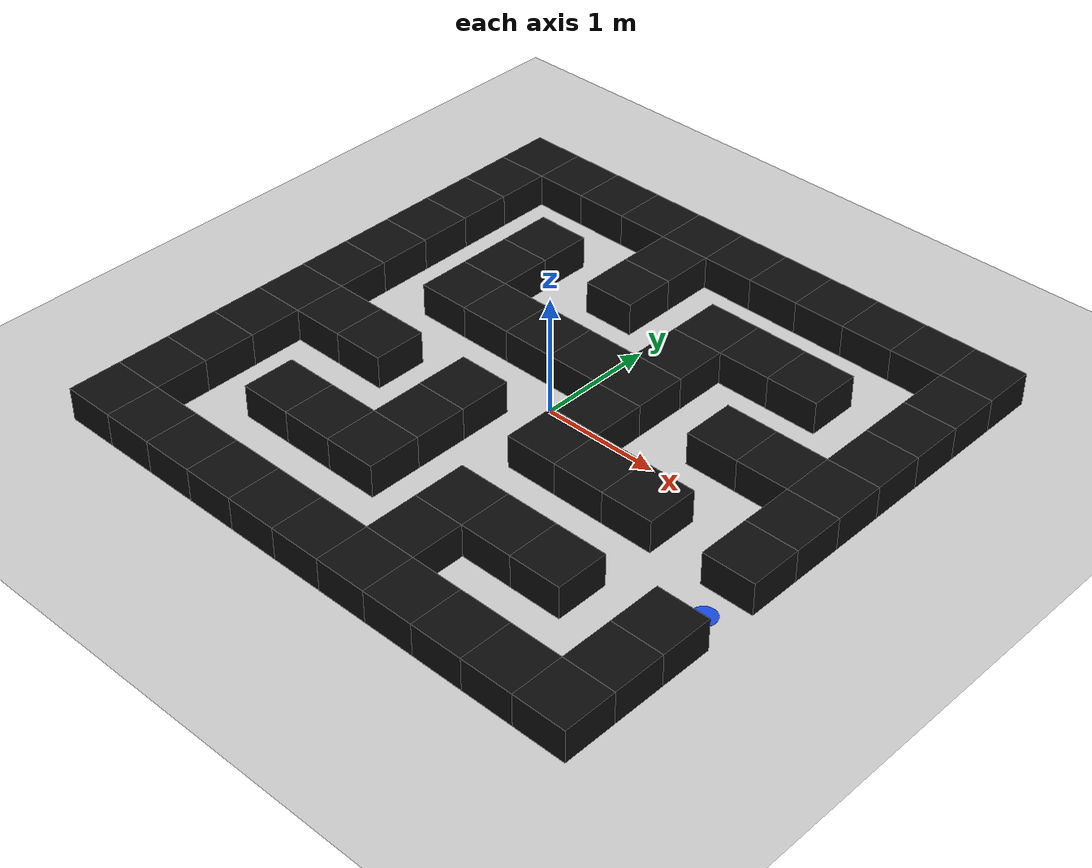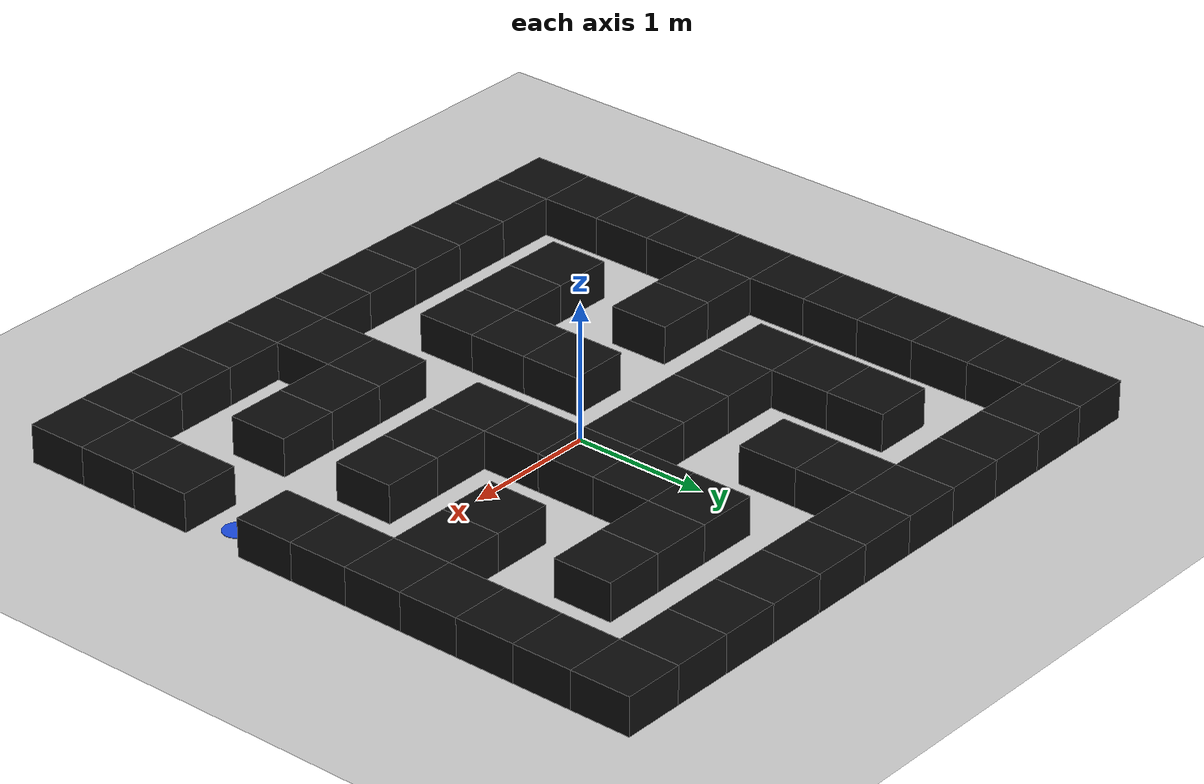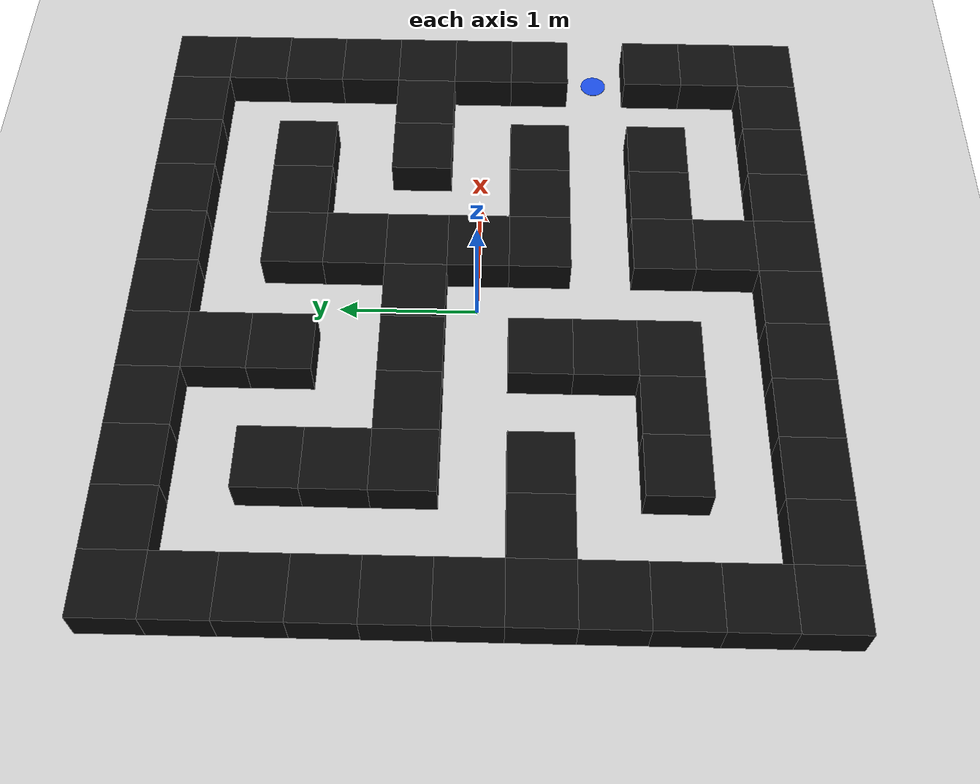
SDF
<?xml version="1.0"?>
<sdf version="1.9">
  <world name="ros2_world">

    <plugin filename="gz-sim-physics-system"
            name="gz::sim::systems::Physics"/>

    <plugin filename="gz-sim-user-commands-system"
            name="gz::sim::systems::UserCommands"/>

    <plugin filename="gz-sim-scene-broadcaster-system"
            name="gz::sim::systems::SceneBroadcaster"/>

    <plugin filename="gz-sim-sensors-system"
            name="gz::sim::systems::Sensors">
      <render_engine>ogre2</render_engine>
    </plugin>

    <light type="directional" name="sun">
      <pose>0 0 10 0 0 0</pose>
      <diffuse>0.8 0.8 0.8 1</diffuse>
      <specular>0.2 0.2 0.2 1</specular>
      <direction>-0.5 0.1 -0.9</direction>
    </light>

    <model name="ground_plane">
      <static>true</static>
      <link name="link">
        <collision name="collision">
          <geometry><plane><normal>0 0 1</normal><size>9 9</size></plane></geometry>
        </collision>
        <visual name="visual">
          <geometry><plane><normal>0 0 1</normal><size>9 9</size></plane></geometry>
          <material>
            <ambient>0.82 0.82 0.82 1</ambient>
            <diffuse>0.82 0.82 0.82 1</diffuse>
          </material>
        </visual>
      </link>
    </model>

    <model name="wall_0">
      <static>true</static>
      <pose>-2.250 2.250 0.140 0 0 0</pose>
      <link name="link">
        <collision name="collision">
          <geometry><box><size>0.450 0.450 0.280</size></box></geometry>
        </collision>
        <visual name="visual">
          <geometry><box><size>0.450 0.450 0.280</size></box></geometry>
          <material>
            <ambient>0.05 0.05 0.05 1</ambient>
            <diffuse>0.05 0.05 0.05 1</diffuse>
          </material>
        </visual>
      </link>
    </model>

    <model name="wall_1">
      <static>true</static>
      <pose>-1.800 2.250 0.140 0 0 0</pose>
      <link name="link">
        <collision name="collision">
          <geometry><box><size>0.450 0.450 0.280</size></box></geometry>
        </collision>
        <visual name="visual">
          <geometry><box><size>0.450 0.450 0.280</size></box></geometry>
          <material>
            <ambient>0.05 0.05 0.05 1</ambient>
            <diffuse>0.05 0.05 0.05 1</diffuse>
          </material>
        </visual>
      </link>
    </model>

    <model name="wall_2">
      <static>true</static>
      <pose>-1.350 2.250 0.140 0 0 0</pose>
      <link name="link">
        <collision name="collision">
          <geometry><box><size>0.450 0.450 0.280</size></box></geometry>
        </collision>
        <visual name="visual">
          <geometry><box><size>0.450 0.450 0.280</size></box></geometry>
          <material>
            <ambient>0.05 0.05 0.05 1</ambient>
            <diffuse>0.05 0.05 0.05 1</diffuse>
          </material>
        </visual>
      </link>
    </model>

    <model name="wall_3">
      <static>true</static>
      <pose>-0.900 2.250 0.140 0 0 0</pose>
      <link name="link">
        <collision name="collision">
          <geometry><box><size>0.450 0.450 0.280</size></box></geometry>
        </collision>
        <visual name="visual">
          <geometry><box><size>0.450 0.450 0.280</size></box></geometry>
          <material>
            <ambient>0.05 0.05 0.05 1</ambient>
            <diffuse>0.05 0.05 0.05 1</diffuse>
          </material>
        </visual>
      </link>
    </model>

    <model name="wall_4">
      <static>true</static>
      <pose>-0.450 2.250 0.140 0 0 0</pose>
      <link name="link">
        <collision name="collision">
          <geometry><box><size>0.450 0.450 0.280</size></box></geometry>
        </collision>
        <visual name="visual">
          <geometry><box><size>0.450 0.450 0.280</size></box></geometry>
          <material>
            <ambient>0.05 0.05 0.05 1</ambient>
            <diffuse>0.05 0.05 0.05 1</diffuse>
          </material>
        </visual>
      </link>
    </model>

    <model name="wall_5">
      <static>true</static>
      <pose>0.000 2.250 0.140 0 0 0</pose>
      <link name="link">
        <collision name="collision">
          <geometry><box><size>0.450 0.450 0.280</size></box></geometry>
        </collision>
        <visual name="visual">
          <geometry><box><size>0.450 0.450 0.280</size></box></geometry>
          <material>
            <ambient>0.05 0.05 0.05 1</ambient>
            <diffuse>0.05 0.05 0.05 1</diffuse>
          </material>
        </visual>
      </link>
    </model>

    <model name="wall_6">
      <static>true</static>
      <pose>0.450 2.250 0.140 0 0 0</pose>
      <link name="link">
        <collision name="collision">
          <geometry><box><size>0.450 0.450 0.280</size></box></geometry>
        </collision>
        <visual name="visual">
          <geometry><box><size>0.450 0.450 0.280</size></box></geometry>
          <material>
            <ambient>0.05 0.05 0.05 1</ambient>
            <diffuse>0.05 0.05 0.05 1</diffuse>
          </material>
        </visual>
      </link>
    </model>

    <model name="wall_7">
      <static>true</static>
      <pose>0.900 2.250 0.140 0 0 0</pose>
      <link name="link">
        <collision name="collision">
          <geometry><box><size>0.450 0.450 0.280</size></box></geometry>
        </collision>
        <visual name="visual">
          <geometry><box><size>0.450 0.450 0.280</size></box></geometry>
          <material>
            <ambient>0.05 0.05 0.05 1</ambient>
            <diffuse>0.05 0.05 0.05 1</diffuse>
          </material>
        </visual>
      </link>
    </model>

    <model name="wall_8">
      <static>true</static>
      <pose>1.350 2.250 0.140 0 0 0</pose>
      <link name="link">
        <collision name="collision">
          <geometry><box><size>0.450 0.450 0.280</size></box></geometry>
        </collision>
        <visual name="visual">
          <geometry><box><size>0.450 0.450 0.280</size></box></geometry>
          <material>
            <ambient>0.05 0.05 0.05 1</ambient>
            <diffuse>0.05 0.05 0.05 1</diffuse>
          </material>
        </visual>
      </link>
    </model>

    <model name="wall_9">
      <static>true</static>
      <pose>1.800 2.250 0.140 0 0 0</pose>
      <link name="link">
        <collision name="collision">
          <geometry><box><size>0.450 0.450 0.280</size></box></geometry>
        </collision>
        <visual name="visual">
          <geometry><box><size>0.450 0.450 0.280</size></box></geometry>
          <material>
            <ambient>0.05 0.05 0.05 1</ambient>
            <diffuse>0.05 0.05 0.05 1</diffuse>
          </material>
        </visual>
      </link>
    </model>

    <model name="wall_10">
      <static>true</static>
      <pose>2.250 2.250 0.140 0 0 0</pose>
      <link name="link">
        <collision name="collision">
          <geometry><box><size>0.450 0.450 0.280</size></box></geometry>
        </collision>
        <visual name="visual">
          <geometry><box><size>0.450 0.450 0.280</size></box></geometry>
          <material>
            <ambient>0.05 0.05 0.05 1</ambient>
            <diffuse>0.05 0.05 0.05 1</diffuse>
          </material>
        </visual>
      </link>
    </model>

    <model name="wall_11">
      <static>true</static>
      <pose>-2.250 1.800 0.140 0 0 0</pose>
      <link name="link">
        <collision name="collision">
          <geometry><box><size>0.450 0.450 0.280</size></box></geometry>
        </collision>
        <visual name="visual">
          <geometry><box><size>0.450 0.450 0.280</size></box></geometry>
          <material>
            <ambient>0.05 0.05 0.05 1</ambient>
            <diffuse>0.05 0.05 0.05 1</diffuse>
          </material>
        </visual>
      </link>
    </model>

    <model name="wall_12">
      <static>true</static>
      <pose>-0.450 1.800 0.140 0 0 0</pose>
      <link name="link">
        <collision name="collision">
          <geometry><box><size>0.450 0.450 0.280</size></box></geometry>
        </collision>
        <visual name="visual">
          <geometry><box><size>0.450 0.450 0.280</size></box></geometry>
          <material>
            <ambient>0.05 0.05 0.05 1</ambient>
            <diffuse>0.05 0.05 0.05 1</diffuse>
          </material>
        </visual>
      </link>
    </model>

    <model name="wall_13">
      <static>true</static>
      <pose>2.250 1.800 0.140 0 0 0</pose>
      <link name="link">
        <collision name="collision">
          <geometry><box><size>0.450 0.450 0.280</size></box></geometry>
        </collision>
        <visual name="visual">
          <geometry><box><size>0.450 0.450 0.280</size></box></geometry>
          <material>
            <ambient>0.05 0.05 0.05 1</ambient>
            <diffuse>0.05 0.05 0.05 1</diffuse>
          </material>
        </visual>
      </link>
    </model>

    <model name="wall_14">
      <static>true</static>
      <pose>-2.250 1.350 0.140 0 0 0</pose>
      <link name="link">
        <collision name="collision">
          <geometry><box><size>0.450 0.450 0.280</size></box></geometry>
        </collision>
        <visual name="visual">
          <geometry><box><size>0.450 0.450 0.280</size></box></geometry>
          <material>
            <ambient>0.05 0.05 0.05 1</ambient>
            <diffuse>0.05 0.05 0.05 1</diffuse>
          </material>
        </visual>
      </link>
    </model>

    <model name="wall_15">
      <static>true</static>
      <pose>-1.350 1.350 0.140 0 0 0</pose>
      <link name="link">
        <collision name="collision">
          <geometry><box><size>0.450 0.450 0.280</size></box></geometry>
        </collision>
        <visual name="visual">
          <geometry><box><size>0.450 0.450 0.280</size></box></geometry>
          <material>
            <ambient>0.05 0.05 0.05 1</ambient>
            <diffuse>0.05 0.05 0.05 1</diffuse>
          </material>
        </visual>
      </link>
    </model>

    <model name="wall_16">
      <static>true</static>
      <pose>-0.450 1.350 0.140 0 0 0</pose>
      <link name="link">
        <collision name="collision">
          <geometry><box><size>0.450 0.450 0.280</size></box></geometry>
        </collision>
        <visual name="visual">
          <geometry><box><size>0.450 0.450 0.280</size></box></geometry>
          <material>
            <ambient>0.05 0.05 0.05 1</ambient>
            <diffuse>0.05 0.05 0.05 1</diffuse>
          </material>
        </visual>
      </link>
    </model>

    <model name="wall_17">
      <static>true</static>
      <pose>0.450 1.350 0.140 0 0 0</pose>
      <link name="link">
        <collision name="collision">
          <geometry><box><size>0.450 0.450 0.280</size></box></geometry>
        </collision>
        <visual name="visual">
          <geometry><box><size>0.450 0.450 0.280</size></box></geometry>
          <material>
            <ambient>0.05 0.05 0.05 1</ambient>
            <diffuse>0.05 0.05 0.05 1</diffuse>
          </material>
        </visual>
      </link>
    </model>

    <model name="wall_18">
      <static>true</static>
      <pose>0.900 1.350 0.140 0 0 0</pose>
      <link name="link">
        <collision name="collision">
          <geometry><box><size>0.450 0.450 0.280</size></box></geometry>
        </collision>
        <visual name="visual">
          <geometry><box><size>0.450 0.450 0.280</size></box></geometry>
          <material>
            <ambient>0.05 0.05 0.05 1</ambient>
            <diffuse>0.05 0.05 0.05 1</diffuse>
          </material>
        </visual>
      </link>
    </model>

    <model name="wall_19">
      <static>true</static>
      <pose>1.350 1.350 0.140 0 0 0</pose>
      <link name="link">
        <collision name="collision">
          <geometry><box><size>0.450 0.450 0.280</size></box></geometry>
        </collision>
        <visual name="visual">
          <geometry><box><size>0.450 0.450 0.280</size></box></geometry>
          <material>
            <ambient>0.05 0.05 0.05 1</ambient>
            <diffuse>0.05 0.05 0.05 1</diffuse>
          </material>
        </visual>
      </link>
    </model>

    <model name="wall_20">
      <static>true</static>
      <pose>2.250 1.350 0.140 0 0 0</pose>
      <link name="link">
        <collision name="collision">
          <geometry><box><size>0.450 0.450 0.280</size></box></geometry>
        </collision>
        <visual name="visual">
          <geometry><box><size>0.450 0.450 0.280</size></box></geometry>
          <material>
            <ambient>0.05 0.05 0.05 1</ambient>
            <diffuse>0.05 0.05 0.05 1</diffuse>
          </material>
        </visual>
      </link>
    </model>

    <model name="wall_21">
      <static>true</static>
      <pose>-2.250 0.900 0.140 0 0 0</pose>
      <link name="link">
        <collision name="collision">
          <geometry><box><size>0.450 0.450 0.280</size></box></geometry>
        </collision>
        <visual name="visual">
          <geometry><box><size>0.450 0.450 0.280</size></box></geometry>
          <material>
            <ambient>0.05 0.05 0.05 1</ambient>
            <diffuse>0.05 0.05 0.05 1</diffuse>
          </material>
        </visual>
      </link>
    </model>

    <model name="wall_22">
      <static>true</static>
      <pose>-1.350 0.900 0.140 0 0 0</pose>
      <link name="link">
        <collision name="collision">
          <geometry><box><size>0.450 0.450 0.280</size></box></geometry>
        </collision>
        <visual name="visual">
          <geometry><box><size>0.450 0.450 0.280</size></box></geometry>
          <material>
            <ambient>0.05 0.05 0.05 1</ambient>
            <diffuse>0.05 0.05 0.05 1</diffuse>
          </material>
        </visual>
      </link>
    </model>

    <model name="wall_23">
      <static>true</static>
      <pose>0.450 0.900 0.140 0 0 0</pose>
      <link name="link">
        <collision name="collision">
          <geometry><box><size>0.450 0.450 0.280</size></box></geometry>
        </collision>
        <visual name="visual">
          <geometry><box><size>0.450 0.450 0.280</size></box></geometry>
          <material>
            <ambient>0.05 0.05 0.05 1</ambient>
            <diffuse>0.05 0.05 0.05 1</diffuse>
          </material>
        </visual>
      </link>
    </model>

    <model name="wall_24">
      <static>true</static>
      <pose>2.250 0.900 0.140 0 0 0</pose>
      <link name="link">
        <collision name="collision">
          <geometry><box><size>0.450 0.450 0.280</size></box></geometry>
        </collision>
        <visual name="visual">
          <geometry><box><size>0.450 0.450 0.280</size></box></geometry>
          <material>
            <ambient>0.05 0.05 0.05 1</ambient>
            <diffuse>0.05 0.05 0.05 1</diffuse>
          </material>
        </visual>
      </link>
    </model>

    <model name="wall_25">
      <static>true</static>
      <pose>-2.250 0.450 0.140 0 0 0</pose>
      <link name="link">
        <collision name="collision">
          <geometry><box><size>0.450 0.450 0.280</size></box></geometry>
        </collision>
        <visual name="visual">
          <geometry><box><size>0.450 0.450 0.280</size></box></geometry>
          <material>
            <ambient>0.05 0.05 0.05 1</ambient>
            <diffuse>0.05 0.05 0.05 1</diffuse>
          </material>
        </visual>
      </link>
    </model>

    <model name="wall_26">
      <static>true</static>
      <pose>-1.350 0.450 0.140 0 0 0</pose>
      <link name="link">
        <collision name="collision">
          <geometry><box><size>0.450 0.450 0.280</size></box></geometry>
        </collision>
        <visual name="visual">
          <geometry><box><size>0.450 0.450 0.280</size></box></geometry>
          <material>
            <ambient>0.05 0.05 0.05 1</ambient>
            <diffuse>0.05 0.05 0.05 1</diffuse>
          </material>
        </visual>
      </link>
    </model>

    <model name="wall_27">
      <static>true</static>
      <pose>-0.900 0.450 0.140 0 0 0</pose>
      <link name="link">
        <collision name="collision">
          <geometry><box><size>0.450 0.450 0.280</size></box></geometry>
        </collision>
        <visual name="visual">
          <geometry><box><size>0.450 0.450 0.280</size></box></geometry>
          <material>
            <ambient>0.05 0.05 0.05 1</ambient>
            <diffuse>0.05 0.05 0.05 1</diffuse>
          </material>
        </visual>
      </link>
    </model>

    <model name="wall_28">
      <static>true</static>
      <pose>-0.450 0.450 0.140 0 0 0</pose>
      <link name="link">
        <collision name="collision">
          <geometry><box><size>0.450 0.450 0.280</size></box></geometry>
        </collision>
        <visual name="visual">
          <geometry><box><size>0.450 0.450 0.280</size></box></geometry>
          <material>
            <ambient>0.05 0.05 0.05 1</ambient>
            <diffuse>0.05 0.05 0.05 1</diffuse>
          </material>
        </visual>
      </link>
    </model>

    <model name="wall_29">
      <static>true</static>
      <pose>0.000 0.450 0.140 0 0 0</pose>
      <link name="link">
        <collision name="collision">
          <geometry><box><size>0.450 0.450 0.280</size></box></geometry>
        </collision>
        <visual name="visual">
          <geometry><box><size>0.450 0.450 0.280</size></box></geometry>
          <material>
            <ambient>0.05 0.05 0.05 1</ambient>
            <diffuse>0.05 0.05 0.05 1</diffuse>
          </material>
        </visual>
      </link>
    </model>

    <model name="wall_30">
      <static>true</static>
      <pose>0.450 0.450 0.140 0 0 0</pose>
      <link name="link">
        <collision name="collision">
          <geometry><box><size>0.450 0.450 0.280</size></box></geometry>
        </collision>
        <visual name="visual">
          <geometry><box><size>0.450 0.450 0.280</size></box></geometry>
          <material>
            <ambient>0.05 0.05 0.05 1</ambient>
            <diffuse>0.05 0.05 0.05 1</diffuse>
          </material>
        </visual>
      </link>
    </model>

    <model name="wall_31">
      <static>true</static>
      <pose>1.350 0.450 0.140 0 0 0</pose>
      <link name="link">
        <collision name="collision">
          <geometry><box><size>0.450 0.450 0.280</size></box></geometry>
        </collision>
        <visual name="visual">
          <geometry><box><size>0.450 0.450 0.280</size></box></geometry>
          <material>
            <ambient>0.05 0.05 0.05 1</ambient>
            <diffuse>0.05 0.05 0.05 1</diffuse>
          </material>
        </visual>
      </link>
    </model>

    <model name="wall_32">
      <static>true</static>
      <pose>1.800 0.450 0.140 0 0 0</pose>
      <link name="link">
        <collision name="collision">
          <geometry><box><size>0.450 0.450 0.280</size></box></geometry>
        </collision>
        <visual name="visual">
          <geometry><box><size>0.450 0.450 0.280</size></box></geometry>
          <material>
            <ambient>0.05 0.05 0.05 1</ambient>
            <diffuse>0.05 0.05 0.05 1</diffuse>
          </material>
        </visual>
      </link>
    </model>

    <model name="wall_33">
      <static>true</static>
      <pose>2.250 0.450 0.140 0 0 0</pose>
      <link name="link">
        <collision name="collision">
          <geometry><box><size>0.450 0.450 0.280</size></box></geometry>
        </collision>
        <visual name="visual">
          <geometry><box><size>0.450 0.450 0.280</size></box></geometry>
          <material>
            <ambient>0.05 0.05 0.05 1</ambient>
            <diffuse>0.05 0.05 0.05 1</diffuse>
          </material>
        </visual>
      </link>
    </model>

    <model name="wall_34">
      <static>true</static>
      <pose>-2.250 0.000 0.140 0 0 0</pose>
      <link name="link">
        <collision name="collision">
          <geometry><box><size>0.450 0.450 0.280</size></box></geometry>
        </collision>
        <visual name="visual">
          <geometry><box><size>0.450 0.450 0.280</size></box></geometry>
          <material>
            <ambient>0.05 0.05 0.05 1</ambient>
            <diffuse>0.05 0.05 0.05 1</diffuse>
          </material>
        </visual>
      </link>
    </model>

    <model name="wall_35">
      <static>true</static>
      <pose>0.450 0.000 0.140 0 0 0</pose>
      <link name="link">
        <collision name="collision">
          <geometry><box><size>0.450 0.450 0.280</size></box></geometry>
        </collision>
        <visual name="visual">
          <geometry><box><size>0.450 0.450 0.280</size></box></geometry>
          <material>
            <ambient>0.05 0.05 0.05 1</ambient>
            <diffuse>0.05 0.05 0.05 1</diffuse>
          </material>
        </visual>
      </link>
    </model>

    <model name="wall_36">
      <static>true</static>
      <pose>2.250 0.000 0.140 0 0 0</pose>
      <link name="link">
        <collision name="collision">
          <geometry><box><size>0.450 0.450 0.280</size></box></geometry>
        </collision>
        <visual name="visual">
          <geometry><box><size>0.450 0.450 0.280</size></box></geometry>
          <material>
            <ambient>0.05 0.05 0.05 1</ambient>
            <diffuse>0.05 0.05 0.05 1</diffuse>
          </material>
        </visual>
      </link>
    </model>

    <model name="wall_37">
      <static>true</static>
      <pose>-2.250 -0.450 0.140 0 0 0</pose>
      <link name="link">
        <collision name="collision">
          <geometry><box><size>0.450 0.450 0.280</size></box></geometry>
        </collision>
        <visual name="visual">
          <geometry><box><size>0.450 0.450 0.280</size></box></geometry>
          <material>
            <ambient>0.05 0.05 0.05 1</ambient>
            <diffuse>0.05 0.05 0.05 1</diffuse>
          </material>
        </visual>
      </link>
    </model>

    <model name="wall_38">
      <static>true</static>
      <pose>-1.800 -0.450 0.140 0 0 0</pose>
      <link name="link">
        <collision name="collision">
          <geometry><box><size>0.450 0.450 0.280</size></box></geometry>
        </collision>
        <visual name="visual">
          <geometry><box><size>0.450 0.450 0.280</size></box></geometry>
          <material>
            <ambient>0.05 0.05 0.05 1</ambient>
            <diffuse>0.05 0.05 0.05 1</diffuse>
          </material>
        </visual>
      </link>
    </model>

    <model name="wall_39">
      <static>true</static>
      <pose>-1.350 -0.450 0.140 0 0 0</pose>
      <link name="link">
        <collision name="collision">
          <geometry><box><size>0.450 0.450 0.280</size></box></geometry>
        </collision>
        <visual name="visual">
          <geometry><box><size>0.450 0.450 0.280</size></box></geometry>
          <material>
            <ambient>0.05 0.05 0.05 1</ambient>
            <diffuse>0.05 0.05 0.05 1</diffuse>
          </material>
        </visual>
      </link>
    </model>

    <model name="wall_40">
      <static>true</static>
      <pose>-0.450 -0.450 0.140 0 0 0</pose>
      <link name="link">
        <collision name="collision">
          <geometry><box><size>0.450 0.450 0.280</size></box></geometry>
        </collision>
        <visual name="visual">
          <geometry><box><size>0.450 0.450 0.280</size></box></geometry>
          <material>
            <ambient>0.05 0.05 0.05 1</ambient>
            <diffuse>0.05 0.05 0.05 1</diffuse>
          </material>
        </visual>
      </link>
    </model>

    <model name="wall_41">
      <static>true</static>
      <pose>0.450 -0.450 0.140 0 0 0</pose>
      <link name="link">
        <collision name="collision">
          <geometry><box><size>0.450 0.450 0.280</size></box></geometry>
        </collision>
        <visual name="visual">
          <geometry><box><size>0.450 0.450 0.280</size></box></geometry>
          <material>
            <ambient>0.05 0.05 0.05 1</ambient>
            <diffuse>0.05 0.05 0.05 1</diffuse>
          </material>
        </visual>
      </link>
    </model>

    <model name="wall_42">
      <static>true</static>
      <pose>0.900 -0.450 0.140 0 0 0</pose>
      <link name="link">
        <collision name="collision">
          <geometry><box><size>0.450 0.450 0.280</size></box></geometry>
        </collision>
        <visual name="visual">
          <geometry><box><size>0.450 0.450 0.280</size></box></geometry>
          <material>
            <ambient>0.05 0.05 0.05 1</ambient>
            <diffuse>0.05 0.05 0.05 1</diffuse>
          </material>
        </visual>
      </link>
    </model>

    <model name="wall_43">
      <static>true</static>
      <pose>1.350 -0.450 0.140 0 0 0</pose>
      <link name="link">
        <collision name="collision">
          <geometry><box><size>0.450 0.450 0.280</size></box></geometry>
        </collision>
        <visual name="visual">
          <geometry><box><size>0.450 0.450 0.280</size></box></geometry>
          <material>
            <ambient>0.05 0.05 0.05 1</ambient>
            <diffuse>0.05 0.05 0.05 1</diffuse>
          </material>
        </visual>
      </link>
    </model>

    <model name="wall_44">
      <static>true</static>
      <pose>2.250 -0.450 0.140 0 0 0</pose>
      <link name="link">
        <collision name="collision">
          <geometry><box><size>0.450 0.450 0.280</size></box></geometry>
        </collision>
        <visual name="visual">
          <geometry><box><size>0.450 0.450 0.280</size></box></geometry>
          <material>
            <ambient>0.05 0.05 0.05 1</ambient>
            <diffuse>0.05 0.05 0.05 1</diffuse>
          </material>
        </visual>
      </link>
    </model>

    <model name="wall_45">
      <static>true</static>
      <pose>-2.250 -0.900 0.140 0 0 0</pose>
      <link name="link">
        <collision name="collision">
          <geometry><box><size>0.450 0.450 0.280</size></box></geometry>
        </collision>
        <visual name="visual">
          <geometry><box><size>0.450 0.450 0.280</size></box></geometry>
          <material>
            <ambient>0.05 0.05 0.05 1</ambient>
            <diffuse>0.05 0.05 0.05 1</diffuse>
          </material>
        </visual>
      </link>
    </model>

    <model name="wall_46">
      <static>true</static>
      <pose>-0.450 -0.900 0.140 0 0 0</pose>
      <link name="link">
        <collision name="collision">
          <geometry><box><size>0.450 0.450 0.280</size></box></geometry>
        </collision>
        <visual name="visual">
          <geometry><box><size>0.450 0.450 0.280</size></box></geometry>
          <material>
            <ambient>0.05 0.05 0.05 1</ambient>
            <diffuse>0.05 0.05 0.05 1</diffuse>
          </material>
        </visual>
      </link>
    </model>

    <model name="entrada_0">
      <static>true</static>
      <pose>2.250 -0.900 0.002 0 0 0</pose>
      <link name="link">
        <visual name="visual">
          <geometry><cylinder><radius>0.099</radius><length>0.004</length></cylinder></geometry>
          <material>
            <ambient>0.1 0.3 0.9 1</ambient>
            <diffuse>0.1 0.3 0.9 1</diffuse>
          </material>
        </visual>
      </link>
    </model>

    <model name="wall_47">
      <static>true</static>
      <pose>-2.250 -1.350 0.140 0 0 0</pose>
      <link name="link">
        <collision name="collision">
          <geometry><box><size>0.450 0.450 0.280</size></box></geometry>
        </collision>
        <visual name="visual">
          <geometry><box><size>0.450 0.450 0.280</size></box></geometry>
          <material>
            <ambient>0.05 0.05 0.05 1</ambient>
            <diffuse>0.05 0.05 0.05 1</diffuse>
          </material>
        </visual>
      </link>
    </model>

    <model name="wall_48">
      <static>true</static>
      <pose>-1.350 -1.350 0.140 0 0 0</pose>
      <link name="link">
        <collision name="collision">
          <geometry><box><size>0.450 0.450 0.280</size></box></geometry>
        </collision>
        <visual name="visual">
          <geometry><box><size>0.450 0.450 0.280</size></box></geometry>
          <material>
            <ambient>0.05 0.05 0.05 1</ambient>
            <diffuse>0.05 0.05 0.05 1</diffuse>
          </material>
        </visual>
      </link>
    </model>

    <model name="wall_49">
      <static>true</static>
      <pose>-0.900 -1.350 0.140 0 0 0</pose>
      <link name="link">
        <collision name="collision">
          <geometry><box><size>0.450 0.450 0.280</size></box></geometry>
        </collision>
        <visual name="visual">
          <geometry><box><size>0.450 0.450 0.280</size></box></geometry>
          <material>
            <ambient>0.05 0.05 0.05 1</ambient>
            <diffuse>0.05 0.05 0.05 1</diffuse>
          </material>
        </visual>
      </link>
    </model>

    <model name="wall_50">
      <static>true</static>
      <pose>-0.450 -1.350 0.140 0 0 0</pose>
      <link name="link">
        <collision name="collision">
          <geometry><box><size>0.450 0.450 0.280</size></box></geometry>
        </collision>
        <visual name="visual">
          <geometry><box><size>0.450 0.450 0.280</size></box></geometry>
          <material>
            <ambient>0.05 0.05 0.05 1</ambient>
            <diffuse>0.05 0.05 0.05 1</diffuse>
          </material>
        </visual>
      </link>
    </model>

    <model name="wall_51">
      <static>true</static>
      <pose>0.450 -1.350 0.140 0 0 0</pose>
      <link name="link">
        <collision name="collision">
          <geometry><box><size>0.450 0.450 0.280</size></box></geometry>
        </collision>
        <visual name="visual">
          <geometry><box><size>0.450 0.450 0.280</size></box></geometry>
          <material>
            <ambient>0.05 0.05 0.05 1</ambient>
            <diffuse>0.05 0.05 0.05 1</diffuse>
          </material>
        </visual>
      </link>
    </model>

    <model name="wall_52">
      <static>true</static>
      <pose>0.900 -1.350 0.140 0 0 0</pose>
      <link name="link">
        <collision name="collision">
          <geometry><box><size>0.450 0.450 0.280</size></box></geometry>
        </collision>
        <visual name="visual">
          <geometry><box><size>0.450 0.450 0.280</size></box></geometry>
          <material>
            <ambient>0.05 0.05 0.05 1</ambient>
            <diffuse>0.05 0.05 0.05 1</diffuse>
          </material>
        </visual>
      </link>
    </model>

    <model name="wall_53">
      <static>true</static>
      <pose>1.350 -1.350 0.140 0 0 0</pose>
      <link name="link">
        <collision name="collision">
          <geometry><box><size>0.450 0.450 0.280</size></box></geometry>
        </collision>
        <visual name="visual">
          <geometry><box><size>0.450 0.450 0.280</size></box></geometry>
          <material>
            <ambient>0.05 0.05 0.05 1</ambient>
            <diffuse>0.05 0.05 0.05 1</diffuse>
          </material>
        </visual>
      </link>
    </model>

    <model name="wall_54">
      <static>true</static>
      <pose>2.250 -1.350 0.140 0 0 0</pose>
      <link name="link">
        <collision name="collision">
          <geometry><box><size>0.450 0.450 0.280</size></box></geometry>
        </collision>
        <visual name="visual">
          <geometry><box><size>0.450 0.450 0.280</size></box></geometry>
          <material>
            <ambient>0.05 0.05 0.05 1</ambient>
            <diffuse>0.05 0.05 0.05 1</diffuse>
          </material>
        </visual>
      </link>
    </model>

    <model name="wall_55">
      <static>true</static>
      <pose>-2.250 -1.800 0.140 0 0 0</pose>
      <link name="link">
        <collision name="collision">
          <geometry><box><size>0.450 0.450 0.280</size></box></geometry>
        </collision>
        <visual name="visual">
          <geometry><box><size>0.450 0.450 0.280</size></box></geometry>
          <material>
            <ambient>0.05 0.05 0.05 1</ambient>
            <diffuse>0.05 0.05 0.05 1</diffuse>
          </material>
        </visual>
      </link>
    </model>

    <model name="wall_56">
      <static>true</static>
      <pose>0.450 -1.800 0.140 0 0 0</pose>
      <link name="link">
        <collision name="collision">
          <geometry><box><size>0.450 0.450 0.280</size></box></geometry>
        </collision>
        <visual name="visual">
          <geometry><box><size>0.450 0.450 0.280</size></box></geometry>
          <material>
            <ambient>0.05 0.05 0.05 1</ambient>
            <diffuse>0.05 0.05 0.05 1</diffuse>
          </material>
        </visual>
      </link>
    </model>

    <model name="wall_57">
      <static>true</static>
      <pose>2.250 -1.800 0.140 0 0 0</pose>
      <link name="link">
        <collision name="collision">
          <geometry><box><size>0.450 0.450 0.280</size></box></geometry>
        </collision>
        <visual name="visual">
          <geometry><box><size>0.450 0.450 0.280</size></box></geometry>
          <material>
            <ambient>0.05 0.05 0.05 1</ambient>
            <diffuse>0.05 0.05 0.05 1</diffuse>
          </material>
        </visual>
      </link>
    </model>

    <model name="wall_58">
      <static>true</static>
      <pose>-2.250 -2.250 0.140 0 0 0</pose>
      <link name="link">
        <collision name="collision">
          <geometry><box><size>0.450 0.450 0.280</size></box></geometry>
        </collision>
        <visual name="visual">
          <geometry><box><size>0.450 0.450 0.280</size></box></geometry>
          <material>
            <ambient>0.05 0.05 0.05 1</ambient>
            <diffuse>0.05 0.05 0.05 1</diffuse>
          </material>
        </visual>
      </link>
    </model>

    <model name="wall_59">
      <static>true</static>
      <pose>-1.800 -2.250 0.140 0 0 0</pose>
      <link name="link">
        <collision name="collision">
          <geometry><box><size>0.450 0.450 0.280</size></box></geometry>
        </collision>
        <visual name="visual">
          <geometry><box><size>0.450 0.450 0.280</size></box></geometry>
          <material>
            <ambient>0.05 0.05 0.05 1</ambient>
            <diffuse>0.05 0.05 0.05 1</diffuse>
          </material>
        </visual>
      </link>
    </model>

    <model name="wall_60">
      <static>true</static>
      <pose>-1.350 -2.250 0.140 0 0 0</pose>
      <link name="link">
        <collision name="collision">
          <geometry><box><size>0.450 0.450 0.280</size></box></geometry>
        </collision>
        <visual name="visual">
          <geometry><box><size>0.450 0.450 0.280</size></box></geometry>
          <material>
            <ambient>0.05 0.05 0.05 1</ambient>
            <diffuse>0.05 0.05 0.05 1</diffuse>
          </material>
        </visual>
      </link>
    </model>

    <model name="wall_61">
      <static>true</static>
      <pose>-0.900 -2.250 0.140 0 0 0</pose>
      <link name="link">
        <collision name="collision">
          <geometry><box><size>0.450 0.450 0.280</size></box></geometry>
        </collision>
        <visual name="visual">
          <geometry><box><size>0.450 0.450 0.280</size></box></geometry>
          <material>
            <ambient>0.05 0.05 0.05 1</ambient>
            <diffuse>0.05 0.05 0.05 1</diffuse>
          </material>
        </visual>
      </link>
    </model>

    <model name="wall_62">
      <static>true</static>
      <pose>-0.450 -2.250 0.140 0 0 0</pose>
      <link name="link">
        <collision name="collision">
          <geometry><box><size>0.450 0.450 0.280</size></box></geometry>
        </collision>
        <visual name="visual">
          <geometry><box><size>0.450 0.450 0.280</size></box></geometry>
          <material>
            <ambient>0.05 0.05 0.05 1</ambient>
            <diffuse>0.05 0.05 0.05 1</diffuse>
          </material>
        </visual>
      </link>
    </model>

    <model name="wall_63">
      <static>true</static>
      <pose>0.000 -2.250 0.140 0 0 0</pose>
      <link name="link">
        <collision name="collision">
          <geometry><box><size>0.450 0.450 0.280</size></box></geometry>
        </collision>
        <visual name="visual">
          <geometry><box><size>0.450 0.450 0.280</size></box></geometry>
          <material>
            <ambient>0.05 0.05 0.05 1</ambient>
            <diffuse>0.05 0.05 0.05 1</diffuse>
          </material>
        </visual>
      </link>
    </model>

    <model name="wall_64">
      <static>true</static>
      <pose>0.450 -2.250 0.140 0 0 0</pose>
      <link name="link">
        <collision name="collision">
          <geometry><box><size>0.450 0.450 0.280</size></box></geometry>
        </collision>
        <visual name="visual">
          <geometry><box><size>0.450 0.450 0.280</size></box></geometry>
          <material>
            <ambient>0.05 0.05 0.05 1</ambient>
            <diffuse>0.05 0.05 0.05 1</diffuse>
          </material>
        </visual>
      </link>
    </model>

    <model name="wall_65">
      <static>true</static>
      <pose>0.900 -2.250 0.140 0 0 0</pose>
      <link name="link">
        <collision name="collision">
          <geometry><box><size>0.450 0.450 0.280</size></box></geometry>
        </collision>
        <visual name="visual">
          <geometry><box><size>0.450 0.450 0.280</size></box></geometry>
          <material>
            <ambient>0.05 0.05 0.05 1</ambient>
            <diffuse>0.05 0.05 0.05 1</diffuse>
          </material>
        </visual>
      </link>
    </model>

    <model name="wall_66">
      <static>true</static>
      <pose>1.350 -2.250 0.140 0 0 0</pose>
      <link name="link">
        <collision name="collision">
          <geometry><box><size>0.450 0.450 0.280</size></box></geometry>
        </collision>
        <visual name="visual">
          <geometry><box><size>0.450 0.450 0.280</size></box></geometry>
          <material>
            <ambient>0.05 0.05 0.05 1</ambient>
            <diffuse>0.05 0.05 0.05 1</diffuse>
          </material>
        </visual>
      </link>
    </model>

    <model name="wall_67">
      <static>true</static>
      <pose>1.800 -2.250 0.140 0 0 0</pose>
      <link name="link">
        <collision name="collision">
          <geometry><box><size>0.450 0.450 0.280</size></box></geometry>
        </collision>
        <visual name="visual">
          <geometry><box><size>0.450 0.450 0.280</size></box></geometry>
          <material>
            <ambient>0.05 0.05 0.05 1</ambient>
            <diffuse>0.05 0.05 0.05 1</diffuse>
          </material>
        </visual>
      </link>
    </model>

    <model name="wall_68">
      <static>true</static>
      <pose>2.250 -2.250 0.140 0 0 0</pose>
      <link name="link">
        <collision name="collision">
          <geometry><box><size>0.450 0.450 0.280</size></box></geometry>
        </collision>
        <visual name="visual">
          <geometry><box><size>0.450 0.450 0.280</size></box></geometry>
          <material>
            <ambient>0.05 0.05 0.05 1</ambient>
            <diffuse>0.05 0.05 0.05 1</diffuse>
          </material>
        </visual>
      </link>
    </model>

  </world>
</sdf>
